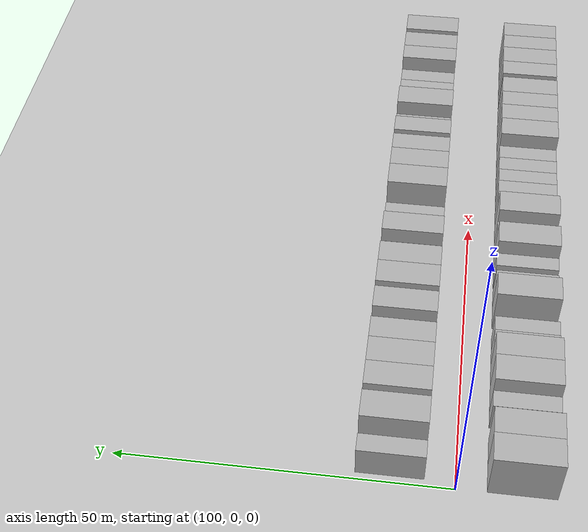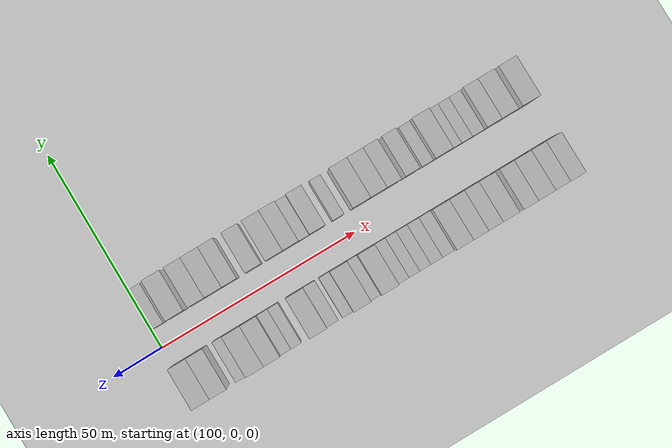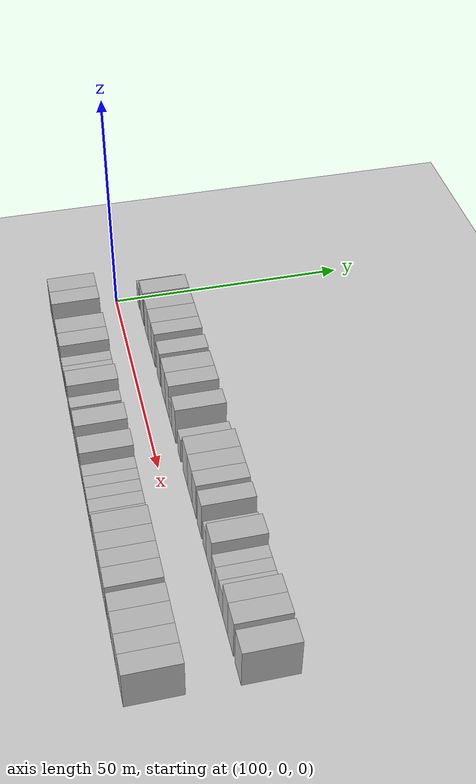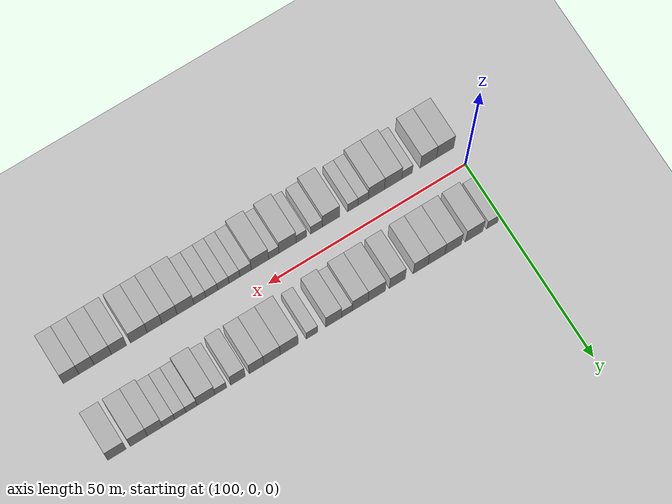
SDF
<sdf version="1.6">
 <world name="default">
  <include>
   <name>ground_plane_2</name>
   <uri>model://HANNAS_ground_plane</uri>
   <pose>100 0 0  0 0 0</pose>
  </include>
  <model name="building_25">
   <static>1</static>
   <pose>102.5829 9.5000 0 0.000000 0.000000 1.570796</pose>
   <link name="link">
    <pose>0 0 3.00 0 0 0</pose>
    <collision name="collision"><geometry><box><size>10.0000 2.8314 6.0000</size></box></geometry></collision>
    <visual name="visual">
     <cast_shadows>0</cast_shadows>
     <geometry><box><size>10.0000 2.8314 6.0000</size></box></geometry>
     <material>
      <script>
       <uri>model://HANNAS_wall/materials/scripts</uri>
       <uri>model://HANNAS_wall/materials/textures</uri>
       <name>vrc/HANNAS_wall</name>
      </script>
     </material>
    </visual>
   </link>
  </model>
  <model name="building_26">
   <static>1</static>
   <pose>107.2261 9.5000 0 0.000000 0.000000 1.570796</pose>
   <link name="link">
    <pose>0 0 4.50 0 0 0</pose>
    <collision name="collision"><geometry><box><size>10.0000 4.4551 9.0000</size></box></geometry></collision>
    <visual name="visual">
     <cast_shadows>0</cast_shadows>
     <geometry><box><size>10.0000 4.4551 9.0000</size></box></geometry>
     <material>
      <script>
       <uri>model://HANNAS_wall/materials/scripts</uri>
       <uri>model://HANNAS_wall/materials/textures</uri>
       <name>vrc/HANNAS_wall</name>
      </script>
     </material>
    </visual>
   </link>
  </model>
  <model name="building_27">
   <static>1</static>
   <pose>112.5299 9.5000 0 0.000000 0.000000 1.570796</pose>
   <link name="link">
    <pose>0 0 4.50 0 0 0</pose>
    <collision name="collision"><geometry><box><size>10.0000 4.1524 9.0000</size></box></geometry></collision>
    <visual name="visual">
     <cast_shadows>0</cast_shadows>
     <geometry><box><size>10.0000 4.1524 9.0000</size></box></geometry>
     <material>
      <script>
       <uri>model://HANNAS_wall/materials/scripts</uri>
       <uri>model://HANNAS_wall/materials/textures</uri>
       <name>vrc/HANNAS_wall</name>
      </script>
     </material>
    </visual>
   </link>
  </model>
  <model name="building_28">
   <static>1</static>
   <pose>116.7682 9.5000 0 0.000000 0.000000 1.570796</pose>
   <link name="link">
    <pose>0 0 4.50 0 0 0</pose>
    <collision name="collision"><geometry><box><size>10.0000 4.3243 9.0000</size></box></geometry></collision>
    <visual name="visual">
     <cast_shadows>0</cast_shadows>
     <geometry><box><size>10.0000 4.3243 9.0000</size></box></geometry>
     <material>
      <script>
       <uri>model://HANNAS_wall/materials/scripts</uri>
       <uri>model://HANNAS_wall/materials/textures</uri>
       <name>vrc/HANNAS_wall</name>
      </script>
     </material>
    </visual>
   </link>
  </model>
  <model name="building_29">
   <static>1</static>
   <pose>120.8029 9.5000 0 0.000000 0.000000 1.570796</pose>
   <link name="link">
    <pose>0 0 4.50 0 0 0</pose>
    <collision name="collision"><geometry><box><size>10.0000 3.7449 9.0000</size></box></geometry></collision>
    <visual name="visual">
     <cast_shadows>0</cast_shadows>
     <geometry><box><size>10.0000 3.7449 9.0000</size></box></geometry>
     <material>
      <script>
       <uri>model://HANNAS_wall/materials/scripts</uri>
       <uri>model://HANNAS_wall/materials/textures</uri>
       <name>vrc/HANNAS_wall</name>
      </script>
     </material>
    </visual>
   </link>
  </model>
  <model name="building_30">
   <static>1</static>
   <pose>126.6835 9.5000 0 0.000000 0.000000 1.570796</pose>
   <link name="link">
    <pose>0 0 4.50 0 0 0</pose>
    <collision name="collision"><geometry><box><size>10.0000 4.0163 9.0000</size></box></geometry></collision>
    <visual name="visual">
     <cast_shadows>0</cast_shadows>
     <geometry><box><size>10.0000 4.0163 9.0000</size></box></geometry>
     <material>
      <script>
       <uri>model://HANNAS_wall/materials/scripts</uri>
       <uri>model://HANNAS_wall/materials/textures</uri>
       <name>vrc/HANNAS_wall</name>
      </script>
     </material>
    </visual>
   </link>
  </model>
  <model name="building_31">
   <static>1</static>
   <pose>131.8514 9.5000 0 0.000000 0.000000 1.570796</pose>
   <link name="link">
    <pose>0 0 4.50 0 0 0</pose>
    <collision name="collision"><geometry><box><size>10.0000 4.3196 9.0000</size></box></geometry></collision>
    <visual name="visual">
     <cast_shadows>0</cast_shadows>
     <geometry><box><size>10.0000 4.3196 9.0000</size></box></geometry>
     <material>
      <script>
       <uri>model://HANNAS_wall/materials/scripts</uri>
       <uri>model://HANNAS_wall/materials/textures</uri>
       <name>vrc/HANNAS_wall</name>
      </script>
     </material>
    </visual>
   </link>
  </model>
  <model name="building_32">
   <static>1</static>
   <pose>136.0064 9.5000 0 0.000000 0.000000 1.570796</pose>
   <link name="link">
    <pose>0 0 4.50 0 0 0</pose>
    <collision name="collision"><geometry><box><size>10.0000 3.9903 9.0000</size></box></geometry></collision>
    <visual name="visual">
     <cast_shadows>0</cast_shadows>
     <geometry><box><size>10.0000 3.9903 9.0000</size></box></geometry>
     <material>
      <script>
       <uri>model://HANNAS_wall/materials/scripts</uri>
       <uri>model://HANNAS_wall/materials/textures</uri>
       <name>vrc/HANNAS_wall</name>
      </script>
     </material>
    </visual>
   </link>
  </model>
  <model name="building_33">
   <static>1</static>
   <pose>139.3425 9.5000 0 0.000000 0.000000 1.570796</pose>
   <link name="link">
    <pose>0 0 3.00 0 0 0</pose>
    <collision name="collision"><geometry><box><size>10.0000 2.6820 6.0000</size></box></geometry></collision>
    <visual name="visual">
     <cast_shadows>0</cast_shadows>
     <geometry><box><size>10.0000 2.6820 6.0000</size></box></geometry>
     <material>
      <script>
       <uri>model://HANNAS_wall/materials/scripts</uri>
       <uri>model://HANNAS_wall/materials/textures</uri>
       <name>vrc/HANNAS_wall</name>
      </script>
     </material>
    </visual>
   </link>
  </model>
  <model name="building_34">
   <static>1</static>
   <pose>142.6555 9.5000 0 0.000000 0.000000 1.570796</pose>
   <link name="link">
    <pose>0 0 4.50 0 0 0</pose>
    <collision name="collision"><geometry><box><size>10.0000 3.9439 9.0000</size></box></geometry></collision>
    <visual name="visual">
     <cast_shadows>0</cast_shadows>
     <geometry><box><size>10.0000 3.9439 9.0000</size></box></geometry>
     <material>
      <script>
       <uri>model://HANNAS_wall/materials/scripts</uri>
       <uri>model://HANNAS_wall/materials/textures</uri>
       <name>vrc/HANNAS_wall</name>
      </script>
     </material>
    </visual>
   </link>
  </model>
  <model name="building_35">
   <static>1</static>
   <pose>148.0614 9.5000 0 0.000000 0.000000 1.570796</pose>
   <link name="link">
    <pose>0 0 3.00 0 0 0</pose>
    <collision name="collision"><geometry><box><size>10.0000 2.8679 6.0000</size></box></geometry></collision>
    <visual name="visual">
     <cast_shadows>0</cast_shadows>
     <geometry><box><size>10.0000 2.8679 6.0000</size></box></geometry>
     <material>
      <script>
       <uri>model://HANNAS_wall/materials/scripts</uri>
       <uri>model://HANNAS_wall/materials/textures</uri>
       <name>vrc/HANNAS_wall</name>
      </script>
     </material>
    </visual>
   </link>
  </model>
  <model name="building_36">
   <static>1</static>
   <pose>153.7349 9.5000 0 0.000000 0.000000 1.570796</pose>
   <link name="link">
    <pose>0 0 4.50 0 0 0</pose>
    <collision name="collision"><geometry><box><size>10.0000 4.4792 9.0000</size></box></geometry></collision>
    <visual name="visual">
     <cast_shadows>0</cast_shadows>
     <geometry><box><size>10.0000 4.4792 9.0000</size></box></geometry>
     <material>
      <script>
       <uri>model://HANNAS_wall/materials/scripts</uri>
       <uri>model://HANNAS_wall/materials/textures</uri>
       <name>vrc/HANNAS_wall</name>
      </script>
     </material>
    </visual>
   </link>
  </model>
  <model name="building_37">
   <static>1</static>
   <pose>158.0085 9.5000 0 0.000000 0.000000 1.570796</pose>
   <link name="link">
    <pose>0 0 4.50 0 0 0</pose>
    <collision name="collision"><geometry><box><size>10.0000 4.0679 9.0000</size></box></geometry></collision>
    <visual name="visual">
     <cast_shadows>0</cast_shadows>
     <geometry><box><size>10.0000 4.0679 9.0000</size></box></geometry>
     <material>
      <script>
       <uri>model://HANNAS_wall/materials/scripts</uri>
       <uri>model://HANNAS_wall/materials/textures</uri>
       <name>vrc/HANNAS_wall</name>
      </script>
     </material>
    </visual>
   </link>
  </model>
  <model name="building_38">
   <static>1</static>
   <pose>161.8492 9.5000 0 0.000000 0.000000 1.570796</pose>
   <link name="link">
    <pose>0 0 4.50 0 0 0</pose>
    <collision name="collision"><geometry><box><size>10.0000 3.6134 9.0000</size></box></geometry></collision>
    <visual name="visual">
     <cast_shadows>0</cast_shadows>
     <geometry><box><size>10.0000 3.6134 9.0000</size></box></geometry>
     <material>
      <script>
       <uri>model://HANNAS_wall/materials/scripts</uri>
       <uri>model://HANNAS_wall/materials/textures</uri>
       <name>vrc/HANNAS_wall</name>
      </script>
     </material>
    </visual>
   </link>
  </model>
  <model name="building_39">
   <static>1</static>
   <pose>166.4575 9.5000 0 0.000000 0.000000 1.570796</pose>
   <link name="link">
    <pose>0 0 4.50 0 0 0</pose>
    <collision name="collision"><geometry><box><size>10.0000 3.6032 9.0000</size></box></geometry></collision>
    <visual name="visual">
     <cast_shadows>0</cast_shadows>
     <geometry><box><size>10.0000 3.6032 9.0000</size></box></geometry>
     <material>
      <script>
       <uri>model://HANNAS_wall/materials/scripts</uri>
       <uri>model://HANNAS_wall/materials/textures</uri>
       <name>vrc/HANNAS_wall</name>
      </script>
     </material>
    </visual>
   </link>
  </model>
  <model name="building_40">
   <static>1</static>
   <pose>170.6993 9.5000 0 0.000000 0.000000 1.570796</pose>
   <link name="link">
    <pose>0 0 3.00 0 0 0</pose>
    <collision name="collision"><geometry><box><size>10.0000 2.8805 6.0000</size></box></geometry></collision>
    <visual name="visual">
     <cast_shadows>0</cast_shadows>
     <geometry><box><size>10.0000 2.8805 6.0000</size></box></geometry>
     <material>
      <script>
       <uri>model://HANNAS_wall/materials/scripts</uri>
       <uri>model://HANNAS_wall/materials/textures</uri>
       <name>vrc/HANNAS_wall</name>
      </script>
     </material>
    </visual>
   </link>
  </model>
  <model name="building_41">
   <static>1</static>
   <pose>174.3470 9.5000 0 0.000000 0.000000 1.570796</pose>
   <link name="link">
    <pose>0 0 4.50 0 0 0</pose>
    <collision name="collision"><geometry><box><size>10.0000 4.4149 9.0000</size></box></geometry></collision>
    <visual name="visual">
     <cast_shadows>0</cast_shadows>
     <geometry><box><size>10.0000 4.4149 9.0000</size></box></geometry>
     <material>
      <script>
       <uri>model://HANNAS_wall/materials/scripts</uri>
       <uri>model://HANNAS_wall/materials/textures</uri>
       <name>vrc/HANNAS_wall</name>
      </script>
     </material>
    </visual>
   </link>
  </model>
  <model name="building_42">
   <static>1</static>
   <pose>177.9311 9.5000 0 0.000000 0.000000 1.570796</pose>
   <link name="link">
    <pose>0 0 3.00 0 0 0</pose>
    <collision name="collision"><geometry><box><size>10.0000 2.7534 6.0000</size></box></geometry></collision>
    <visual name="visual">
     <cast_shadows>0</cast_shadows>
     <geometry><box><size>10.0000 2.7534 6.0000</size></box></geometry>
     <material>
      <script>
       <uri>model://HANNAS_wall/materials/scripts</uri>
       <uri>model://HANNAS_wall/materials/textures</uri>
       <name>vrc/HANNAS_wall</name>
      </script>
     </material>
    </visual>
   </link>
  </model>
  <model name="building_43">
   <static>1</static>
   <pose>180.6876 9.5000 0 0.000000 0.000000 1.570796</pose>
   <link name="link">
    <pose>0 0 3.00 0 0 0</pose>
    <collision name="collision"><geometry><box><size>10.0000 2.7596 6.0000</size></box></geometry></collision>
    <visual name="visual">
     <cast_shadows>0</cast_shadows>
     <geometry><box><size>10.0000 2.7596 6.0000</size></box></geometry>
     <material>
      <script>
       <uri>model://HANNAS_wall/materials/scripts</uri>
       <uri>model://HANNAS_wall/materials/textures</uri>
       <name>vrc/HANNAS_wall</name>
      </script>
     </material>
    </visual>
   </link>
  </model>
  <model name="building_44">
   <static>1</static>
   <pose>183.5621 9.5000 0 0.000000 0.000000 1.570796</pose>
   <link name="link">
    <pose>0 0 3.00 0 0 0</pose>
    <collision name="collision"><geometry><box><size>10.0000 2.9895 6.0000</size></box></geometry></collision>
    <visual name="visual">
     <cast_shadows>0</cast_shadows>
     <geometry><box><size>10.0000 2.9895 6.0000</size></box></geometry>
     <material>
      <script>
       <uri>model://HANNAS_wall/materials/scripts</uri>
       <uri>model://HANNAS_wall/materials/textures</uri>
       <name>vrc/HANNAS_wall</name>
      </script>
     </material>
    </visual>
   </link>
  </model>
  <model name="building_45">
   <static>1</static>
   <pose>186.9106 9.5000 0 0.000000 0.000000 1.570796</pose>
   <link name="link">
    <pose>0 0 4.50 0 0 0</pose>
    <collision name="collision"><geometry><box><size>10.0000 3.7075 9.0000</size></box></geometry></collision>
    <visual name="visual">
     <cast_shadows>0</cast_shadows>
     <geometry><box><size>10.0000 3.7075 9.0000</size></box></geometry>
     <material>
      <script>
       <uri>model://HANNAS_wall/materials/scripts</uri>
       <uri>model://HANNAS_wall/materials/textures</uri>
       <name>vrc/HANNAS_wall</name>
      </script>
     </material>
    </visual>
   </link>
  </model>
  <model name="building_46">
   <static>1</static>
   <pose>190.8525 9.5000 0 0.000000 0.000000 1.570796</pose>
   <link name="link">
    <pose>0 0 4.50 0 0 0</pose>
    <collision name="collision"><geometry><box><size>10.0000 4.1762 9.0000</size></box></geometry></collision>
    <visual name="visual">
     <cast_shadows>0</cast_shadows>
     <geometry><box><size>10.0000 4.1762 9.0000</size></box></geometry>
     <material>
      <script>
       <uri>model://HANNAS_wall/materials/scripts</uri>
       <uri>model://HANNAS_wall/materials/textures</uri>
       <name>vrc/HANNAS_wall</name>
      </script>
     </material>
    </visual>
   </link>
  </model>
  <model name="building_47">
   <static>1</static>
   <pose>196.1854 9.5000 0 0.000000 0.000000 1.570796</pose>
   <link name="link">
    <pose>0 0 4.50 0 0 0</pose>
    <collision name="collision"><geometry><box><size>10.0000 4.4895 9.0000</size></box></geometry></collision>
    <visual name="visual">
     <cast_shadows>0</cast_shadows>
     <geometry><box><size>10.0000 4.4895 9.0000</size></box></geometry>
     <material>
      <script>
       <uri>model://HANNAS_wall/materials/scripts</uri>
       <uri>model://HANNAS_wall/materials/textures</uri>
       <name>vrc/HANNAS_wall</name>
      </script>
     </material>
    </visual>
   </link>
  </model>
  <model name="building_73">
   <static>1</static>
   <pose>102.4089 -9.5000 0 0.000000 0.000000 1.570796</pose>
   <link name="link">
    <pose>0 0 4.50 0 0 0</pose>
    <collision name="collision"><geometry><box><size>10.0000 4.4360 9.0000</size></box></geometry></collision>
    <visual name="visual">
     <cast_shadows>0</cast_shadows>
     <geometry><box><size>10.0000 4.4360 9.0000</size></box></geometry>
     <material>
      <script>
       <uri>model://HANNAS_wall/materials/scripts</uri>
       <uri>model://HANNAS_wall/materials/textures</uri>
       <name>vrc/HANNAS_wall</name>
      </script>
     </material>
    </visual>
   </link>
  </model>
  <model name="building_74">
   <static>1</static>
   <pose>106.7086 -9.5000 0 0.000000 0.000000 1.570796</pose>
   <link name="link">
    <pose>0 0 4.50 0 0 0</pose>
    <collision name="collision"><geometry><box><size>10.0000 4.1635 9.0000</size></box></geometry></collision>
    <visual name="visual">
     <cast_shadows>0</cast_shadows>
     <geometry><box><size>10.0000 4.1635 9.0000</size></box></geometry>
     <material>
      <script>
       <uri>model://HANNAS_wall/materials/scripts</uri>
       <uri>model://HANNAS_wall/materials/textures</uri>
       <name>vrc/HANNAS_wall</name>
      </script>
     </material>
    </visual>
   </link>
  </model>
  <model name="building_75">
   <static>1</static>
   <pose>112.1438 -9.5000 0 0.000000 0.000000 1.570796</pose>
   <link name="link">
    <pose>0 0 3.00 0 0 0</pose>
    <collision name="collision"><geometry><box><size>10.0000 2.7068 6.0000</size></box></geometry></collision>
    <visual name="visual">
     <cast_shadows>0</cast_shadows>
     <geometry><box><size>10.0000 2.7068 6.0000</size></box></geometry>
     <material>
      <script>
       <uri>model://HANNAS_wall/materials/scripts</uri>
       <uri>model://HANNAS_wall/materials/textures</uri>
       <name>vrc/HANNAS_wall</name>
      </script>
     </material>
    </visual>
   </link>
  </model>
  <model name="building_76">
   <static>1</static>
   <pose>115.7169 -9.5000 0 0.000000 0.000000 1.570796</pose>
   <link name="link">
    <pose>0 0 4.50 0 0 0</pose>
    <collision name="collision"><geometry><box><size>10.0000 4.4394 9.0000</size></box></geometry></collision>
    <visual name="visual">
     <cast_shadows>0</cast_shadows>
     <geometry><box><size>10.0000 4.4394 9.0000</size></box></geometry>
     <material>
      <script>
       <uri>model://HANNAS_wall/materials/scripts</uri>
       <uri>model://HANNAS_wall/materials/textures</uri>
       <name>vrc/HANNAS_wall</name>
      </script>
     </material>
    </visual>
   </link>
  </model>
  <model name="building_77">
   <static>1</static>
   <pose>119.9641 -9.5000 0 0.000000 0.000000 1.570796</pose>
   <link name="link">
    <pose>0 0 4.50 0 0 0</pose>
    <collision name="collision"><geometry><box><size>10.0000 4.0549 9.0000</size></box></geometry></collision>
    <visual name="visual">
     <cast_shadows>0</cast_shadows>
     <geometry><box><size>10.0000 4.0549 9.0000</size></box></geometry>
     <material>
      <script>
       <uri>model://HANNAS_wall/materials/scripts</uri>
       <uri>model://HANNAS_wall/materials/textures</uri>
       <name>vrc/HANNAS_wall</name>
      </script>
     </material>
    </visual>
   </link>
  </model>
  <model name="building_78">
   <static>1</static>
   <pose>123.3236 -9.5000 0 0.000000 0.000000 1.570796</pose>
   <link name="link">
    <pose>0 0 3.00 0 0 0</pose>
    <collision name="collision"><geometry><box><size>10.0000 2.6643 6.0000</size></box></geometry></collision>
    <visual name="visual">
     <cast_shadows>0</cast_shadows>
     <geometry><box><size>10.0000 2.6643 6.0000</size></box></geometry>
     <material>
      <script>
       <uri>model://HANNAS_wall/materials/scripts</uri>
       <uri>model://HANNAS_wall/materials/textures</uri>
       <name>vrc/HANNAS_wall</name>
      </script>
     </material>
    </visual>
   </link>
  </model>
  <model name="building_79">
   <static>1</static>
   <pose>125.9611 -9.5000 0 0.000000 0.000000 1.570796</pose>
   <link name="link">
    <pose>0 0 3.00 0 0 0</pose>
    <collision name="collision"><geometry><box><size>10.0000 2.6108 6.0000</size></box></geometry></collision>
    <visual name="visual">
     <cast_shadows>0</cast_shadows>
     <geometry><box><size>10.0000 2.6108 6.0000</size></box></geometry>
     <material>
      <script>
       <uri>model://HANNAS_wall/materials/scripts</uri>
       <uri>model://HANNAS_wall/materials/textures</uri>
       <name>vrc/HANNAS_wall</name>
      </script>
     </material>
    </visual>
   </link>
  </model>
  <model name="building_80">
   <static>1</static>
   <pose>131.4430 -9.5000 0 0.000000 0.000000 1.570796</pose>
   <link name="link">
    <pose>0 0 4.50 0 0 0</pose>
    <collision name="collision"><geometry><box><size>10.0000 4.3530 9.0000</size></box></geometry></collision>
    <visual name="visual">
     <cast_shadows>0</cast_shadows>
     <geometry><box><size>10.0000 4.3530 9.0000</size></box></geometry>
     <material>
      <script>
       <uri>model://HANNAS_wall/materials/scripts</uri>
       <uri>model://HANNAS_wall/materials/textures</uri>
       <name>vrc/HANNAS_wall</name>
      </script>
     </material>
    </visual>
   </link>
  </model>
  <model name="building_81">
   <static>1</static>
   <pose>135.1160 -9.5000 0 0.000000 0.000000 1.570796</pose>
   <link name="link">
    <pose>0 0 3.00 0 0 0</pose>
    <collision name="collision"><geometry><box><size>10.0000 2.9930 6.0000</size></box></geometry></collision>
    <visual name="visual">
     <cast_shadows>0</cast_shadows>
     <geometry><box><size>10.0000 2.9930 6.0000</size></box></geometry>
     <material>
      <script>
       <uri>model://HANNAS_wall/materials/scripts</uri>
       <uri>model://HANNAS_wall/materials/textures</uri>
       <name>vrc/HANNAS_wall</name>
      </script>
     </material>
    </visual>
   </link>
  </model>
  <model name="building_82">
   <static>1</static>
   <pose>138.9165 -9.5000 0 0.000000 0.000000 1.570796</pose>
   <link name="link">
    <pose>0 0 3.00 0 0 0</pose>
    <collision name="collision"><geometry><box><size>10.0000 2.6079 6.0000</size></box></geometry></collision>
    <visual name="visual">
     <cast_shadows>0</cast_shadows>
     <geometry><box><size>10.0000 2.6079 6.0000</size></box></geometry>
     <material>
      <script>
       <uri>model://HANNAS_wall/materials/scripts</uri>
       <uri>model://HANNAS_wall/materials/textures</uri>
       <name>vrc/HANNAS_wall</name>
      </script>
     </material>
    </visual>
   </link>
  </model>
  <model name="building_83">
   <static>1</static>
   <pose>142.4002 -9.5000 0 0.000000 0.000000 1.570796</pose>
   <link name="link">
    <pose>0 0 4.50 0 0 0</pose>
    <collision name="collision"><geometry><box><size>10.0000 4.3595 9.0000</size></box></geometry></collision>
    <visual name="visual">
     <cast_shadows>0</cast_shadows>
     <geometry><box><size>10.0000 4.3595 9.0000</size></box></geometry>
     <material>
      <script>
       <uri>model://HANNAS_wall/materials/scripts</uri>
       <uri>model://HANNAS_wall/materials/textures</uri>
       <name>vrc/HANNAS_wall</name>
      </script>
     </material>
    </visual>
   </link>
  </model>
  <model name="building_84">
   <static>1</static>
   <pose>145.8730 -9.5000 0 0.000000 0.000000 1.570796</pose>
   <link name="link">
    <pose>0 0 3.00 0 0 0</pose>
    <collision name="collision"><geometry><box><size>10.0000 2.5862 6.0000</size></box></geometry></collision>
    <visual name="visual">
     <cast_shadows>0</cast_shadows>
     <geometry><box><size>10.0000 2.5862 6.0000</size></box></geometry>
     <material>
      <script>
       <uri>model://HANNAS_wall/materials/scripts</uri>
       <uri>model://HANNAS_wall/materials/textures</uri>
       <name>vrc/HANNAS_wall</name>
      </script>
     </material>
    </visual>
   </link>
  </model>
  <model name="building_85">
   <static>1</static>
   <pose>149.3285 -9.5000 0 0.000000 0.000000 1.570796</pose>
   <link name="link">
    <pose>0 0 4.50 0 0 0</pose>
    <collision name="collision"><geometry><box><size>10.0000 4.3246 9.0000</size></box></geometry></collision>
    <visual name="visual">
     <cast_shadows>0</cast_shadows>
     <geometry><box><size>10.0000 4.3246 9.0000</size></box></geometry>
     <material>
      <script>
       <uri>model://HANNAS_wall/materials/scripts</uri>
       <uri>model://HANNAS_wall/materials/textures</uri>
       <name>vrc/HANNAS_wall</name>
      </script>
     </material>
    </visual>
   </link>
  </model>
  <model name="building_86">
   <static>1</static>
   <pose>152.9321 -9.5000 0 0.000000 0.000000 1.570796</pose>
   <link name="link">
    <pose>0 0 3.00 0 0 0</pose>
    <collision name="collision"><geometry><box><size>10.0000 2.8826 6.0000</size></box></geometry></collision>
    <visual name="visual">
     <cast_shadows>0</cast_shadows>
     <geometry><box><size>10.0000 2.8826 6.0000</size></box></geometry>
     <material>
      <script>
       <uri>model://HANNAS_wall/materials/scripts</uri>
       <uri>model://HANNAS_wall/materials/textures</uri>
       <name>vrc/HANNAS_wall</name>
      </script>
     </material>
    </visual>
   </link>
  </model>
  <model name="building_87">
   <static>1</static>
   <pose>155.7287 -9.5000 0 0.000000 0.000000 1.570796</pose>
   <link name="link">
    <pose>0 0 3.00 0 0 0</pose>
    <collision name="collision"><geometry><box><size>10.0000 2.7105 6.0000</size></box></geometry></collision>
    <visual name="visual">
     <cast_shadows>0</cast_shadows>
     <geometry><box><size>10.0000 2.7105 6.0000</size></box></geometry>
     <material>
      <script>
       <uri>model://HANNAS_wall/materials/scripts</uri>
       <uri>model://HANNAS_wall/materials/textures</uri>
       <name>vrc/HANNAS_wall</name>
      </script>
     </material>
    </visual>
   </link>
  </model>
  <model name="building_88">
   <static>1</static>
   <pose>158.4864 -9.5000 0 0.000000 0.000000 1.570796</pose>
   <link name="link">
    <pose>0 0 3.00 0 0 0</pose>
    <collision name="collision"><geometry><box><size>10.0000 2.8049 6.0000</size></box></geometry></collision>
    <visual name="visual">
     <cast_shadows>0</cast_shadows>
     <geometry><box><size>10.0000 2.8049 6.0000</size></box></geometry>
     <material>
      <script>
       <uri>model://HANNAS_wall/materials/scripts</uri>
       <uri>model://HANNAS_wall/materials/textures</uri>
       <name>vrc/HANNAS_wall</name>
      </script>
     </material>
    </visual>
   </link>
  </model>
  <model name="building_89">
   <static>1</static>
   <pose>161.3751 -9.5000 0 0.000000 0.000000 1.570796</pose>
   <link name="link">
    <pose>0 0 3.00 0 0 0</pose>
    <collision name="collision"><geometry><box><size>10.0000 2.9727 6.0000</size></box></geometry></collision>
    <visual name="visual">
     <cast_shadows>0</cast_shadows>
     <geometry><box><size>10.0000 2.9727 6.0000</size></box></geometry>
     <material>
      <script>
       <uri>model://HANNAS_wall/materials/scripts</uri>
       <uri>model://HANNAS_wall/materials/textures</uri>
       <name>vrc/HANNAS_wall</name>
      </script>
     </material>
    </visual>
   </link>
  </model>
  <model name="building_90">
   <static>1</static>
   <pose>164.3361 -9.5000 0 0.000000 0.000000 1.570796</pose>
   <link name="link">
    <pose>0 0 3.00 0 0 0</pose>
    <collision name="collision"><geometry><box><size>10.0000 2.9492 6.0000</size></box></geometry></collision>
    <visual name="visual">
     <cast_shadows>0</cast_shadows>
     <geometry><box><size>10.0000 2.9492 6.0000</size></box></geometry>
     <material>
      <script>
       <uri>model://HANNAS_wall/materials/scripts</uri>
       <uri>model://HANNAS_wall/materials/textures</uri>
       <name>vrc/HANNAS_wall</name>
      </script>
     </material>
    </visual>
   </link>
  </model>
  <model name="building_91">
   <static>1</static>
   <pose>167.9001 -9.5000 0 0.000000 0.000000 1.570796</pose>
   <link name="link">
    <pose>0 0 4.50 0 0 0</pose>
    <collision name="collision"><geometry><box><size>10.0000 4.1789 9.0000</size></box></geometry></collision>
    <visual name="visual">
     <cast_shadows>0</cast_shadows>
     <geometry><box><size>10.0000 4.1789 9.0000</size></box></geometry>
     <material>
      <script>
       <uri>model://HANNAS_wall/materials/scripts</uri>
       <uri>model://HANNAS_wall/materials/textures</uri>
       <name>vrc/HANNAS_wall</name>
      </script>
     </material>
    </visual>
   </link>
  </model>
  <model name="building_92">
   <static>1</static>
   <pose>171.8781 -9.5000 0 0.000000 0.000000 1.570796</pose>
   <link name="link">
    <pose>0 0 4.50 0 0 0</pose>
    <collision name="collision"><geometry><box><size>10.0000 3.7770 9.0000</size></box></geometry></collision>
    <visual name="visual">
     <cast_shadows>0</cast_shadows>
     <geometry><box><size>10.0000 3.7770 9.0000</size></box></geometry>
     <material>
      <script>
       <uri>model://HANNAS_wall/materials/scripts</uri>
       <uri>model://HANNAS_wall/materials/textures</uri>
       <name>vrc/HANNAS_wall</name>
      </script>
     </material>
    </visual>
   </link>
  </model>
  <model name="building_93">
   <static>1</static>
   <pose>175.5795 -9.5000 0 0.000000 0.000000 1.570796</pose>
   <link name="link">
    <pose>0 0 4.50 0 0 0</pose>
    <collision name="collision"><geometry><box><size>10.0000 3.6259 9.0000</size></box></geometry></collision>
    <visual name="visual">
     <cast_shadows>0</cast_shadows>
     <geometry><box><size>10.0000 3.6259 9.0000</size></box></geometry>
     <material>
      <script>
       <uri>model://HANNAS_wall/materials/scripts</uri>
       <uri>model://HANNAS_wall/materials/textures</uri>
       <name>vrc/HANNAS_wall</name>
      </script>
     </material>
    </visual>
   </link>
  </model>
  <model name="building_94">
   <static>1</static>
   <pose>179.4469 -9.5000 0 0.000000 0.000000 1.570796</pose>
   <link name="link">
    <pose>0 0 4.50 0 0 0</pose>
    <collision name="collision"><geometry><box><size>10.0000 4.1088 9.0000</size></box></geometry></collision>
    <visual name="visual">
     <cast_shadows>0</cast_shadows>
     <geometry><box><size>10.0000 4.1088 9.0000</size></box></geometry>
     <material>
      <script>
       <uri>model://HANNAS_wall/materials/scripts</uri>
       <uri>model://HANNAS_wall/materials/textures</uri>
       <name>vrc/HANNAS_wall</name>
      </script>
     </material>
    </visual>
   </link>
  </model>
  <model name="building_95">
   <static>1</static>
   <pose>184.3556 -9.5000 0 0.000000 0.000000 1.570796</pose>
   <link name="link">
    <pose>0 0 4.50 0 0 0</pose>
    <collision name="collision"><geometry><box><size>10.0000 3.7087 9.0000</size></box></geometry></collision>
    <visual name="visual">
     <cast_shadows>0</cast_shadows>
     <geometry><box><size>10.0000 3.7087 9.0000</size></box></geometry>
     <material>
      <script>
       <uri>model://HANNAS_wall/materials/scripts</uri>
       <uri>model://HANNAS_wall/materials/textures</uri>
       <name>vrc/HANNAS_wall</name>
      </script>
     </material>
    </visual>
   </link>
  </model>
  <model name="building_96">
   <static>1</static>
   <pose>188.3454 -9.5000 0 0.000000 0.000000 1.570796</pose>
   <link name="link">
    <pose>0 0 4.50 0 0 0</pose>
    <collision name="collision"><geometry><box><size>10.0000 4.2708 9.0000</size></box></geometry></collision>
    <visual name="visual">
     <cast_shadows>0</cast_shadows>
     <geometry><box><size>10.0000 4.2708 9.0000</size></box></geometry>
     <material>
      <script>
       <uri>model://HANNAS_wall/materials/scripts</uri>
       <uri>model://HANNAS_wall/materials/textures</uri>
       <name>vrc/HANNAS_wall</name>
      </script>
     </material>
    </visual>
   </link>
  </model>
  <model name="building_97">
   <static>1</static>
   <pose>192.3405 -9.5000 0 0.000000 0.000000 1.570796</pose>
   <link name="link">
    <pose>0 0 4.50 0 0 0</pose>
    <collision name="collision"><geometry><box><size>10.0000 3.7194 9.0000</size></box></geometry></collision>
    <visual name="visual">
     <cast_shadows>0</cast_shadows>
     <geometry><box><size>10.0000 3.7194 9.0000</size></box></geometry>
     <material>
      <script>
       <uri>model://HANNAS_wall/materials/scripts</uri>
       <uri>model://HANNAS_wall/materials/textures</uri>
       <name>vrc/HANNAS_wall</name>
      </script>
     </material>
    </visual>
   </link>
  </model>
  <model name="building_98">
   <static>1</static>
   <pose>196.1272 -9.5000 0 0.000000 0.000000 1.570796</pose>
   <link name="link">
    <pose>0 0 4.50 0 0 0</pose>
    <collision name="collision"><geometry><box><size>10.0000 3.8539 9.0000</size></box></geometry></collision>
    <visual name="visual">
     <cast_shadows>0</cast_shadows>
     <geometry><box><size>10.0000 3.8539 9.0000</size></box></geometry>
     <material>
      <script>
       <uri>model://HANNAS_wall/materials/scripts</uri>
       <uri>model://HANNAS_wall/materials/textures</uri>
       <name>vrc/HANNAS_wall</name>
      </script>
     </material>
    </visual>
   </link>
  </model>
 </world>
</sdf>
